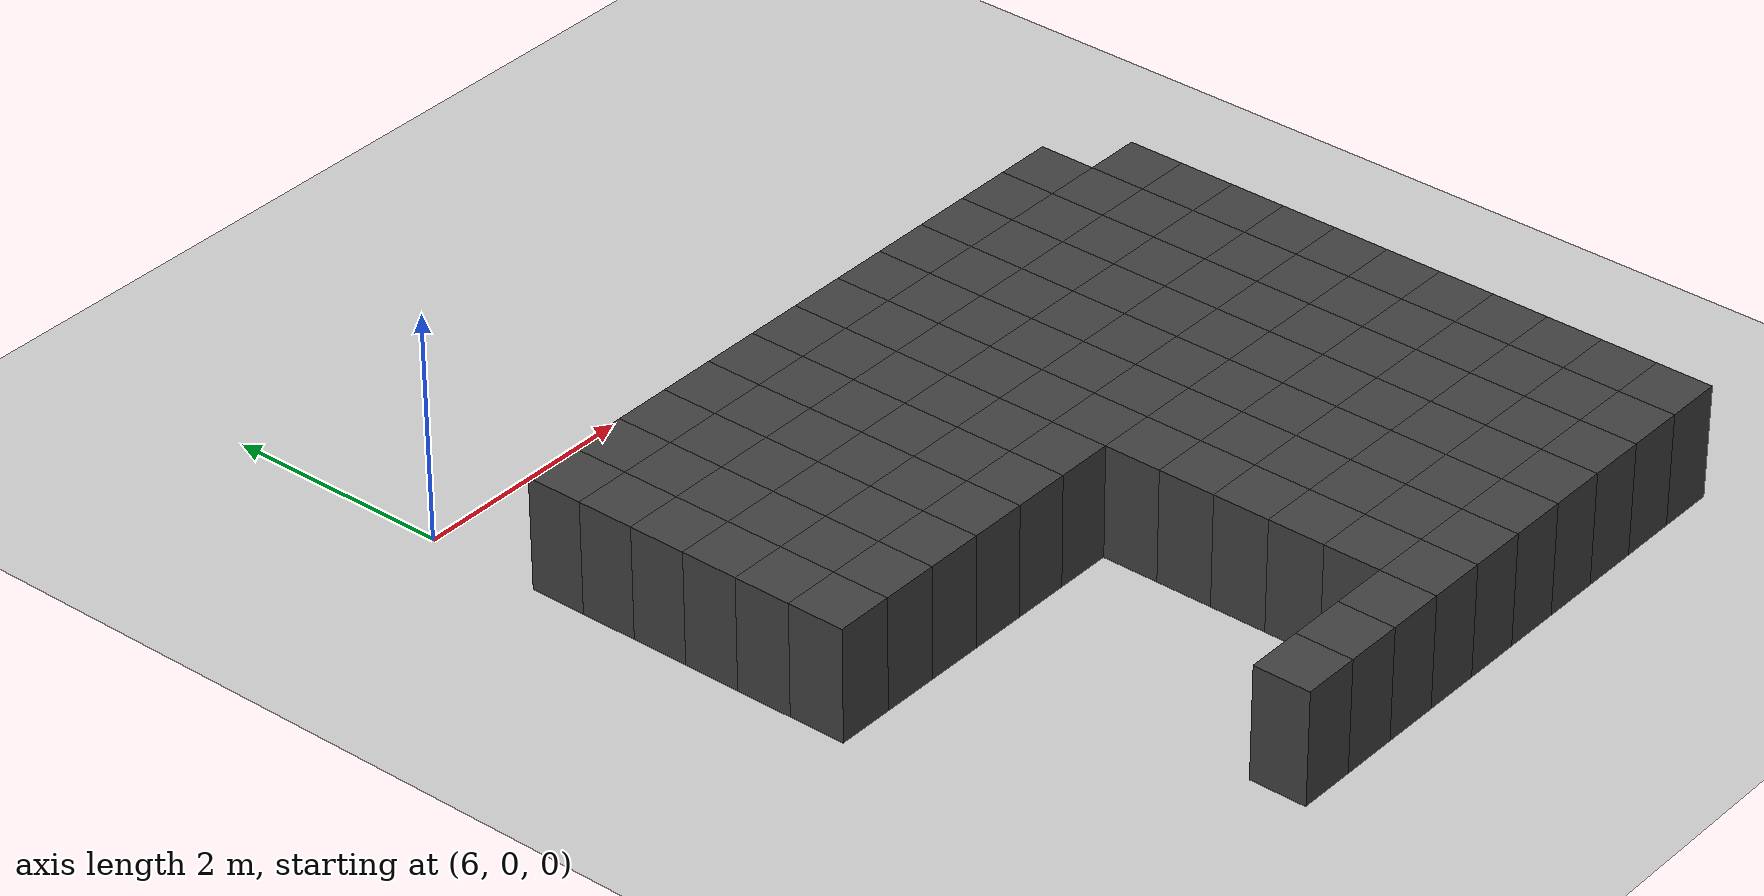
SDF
<sdf version="1.7">
 <world name="map_14888">
  <model name="ground_plane">
   <static>true</static>
   <link name="link">
    <collision name="collision">
     <geometry><plane><normal>0 0 1</normal><size>200 200</size></plane></geometry>
    </collision>
    <visual name="visual">
     <geometry><plane><normal>0 0 1</normal><size>200 200</size></plane></geometry>
     <material><ambient>0.8 0.8 0.8 1</ambient><diffuse>0.8 0.8 0.8 1</diffuse></material>
    </visual>
   </link>
  </model>
  <model name="maze_environment">
   <static>true</static>
   <link name="wall_976">
    <pose>6.250 -1.250 0.500 0 0 0</pose>
    <collision name="col"><geometry><box><size>0.5 0.5 1.0</size></box></geometry></collision>
    <visual name="vis">
     <geometry><box><size>0.5 0.5 1.0</size></box></geometry>
     <material><ambient>0.15 0.15 0.15 1</ambient><diffuse>0.25 0.25 0.25 1</diffuse></material>
    </visual>
   </link>
   <link name="wall_977">
    <pose>6.750 -1.250 0.500 0 0 0</pose>
    <collision name="col"><geometry><box><size>0.5 0.5 1.0</size></box></geometry></collision>
    <visual name="vis">
     <geometry><box><size>0.5 0.5 1.0</size></box></geometry>
     <material><ambient>0.15 0.15 0.15 1</ambient><diffuse>0.25 0.25 0.25 1</diffuse></material>
    </visual>
   </link>
   <link name="wall_978">
    <pose>7.250 -1.250 0.500 0 0 0</pose>
    <collision name="col"><geometry><box><size>0.5 0.5 1.0</size></box></geometry></collision>
    <visual name="vis">
     <geometry><box><size>0.5 0.5 1.0</size></box></geometry>
     <material><ambient>0.15 0.15 0.15 1</ambient><diffuse>0.25 0.25 0.25 1</diffuse></material>
    </visual>
   </link>
   <link name="wall_979">
    <pose>7.750 -1.250 0.500 0 0 0</pose>
    <collision name="col"><geometry><box><size>0.5 0.5 1.0</size></box></geometry></collision>
    <visual name="vis">
     <geometry><box><size>0.5 0.5 1.0</size></box></geometry>
     <material><ambient>0.15 0.15 0.15 1</ambient><diffuse>0.25 0.25 0.25 1</diffuse></material>
    </visual>
   </link>
   <link name="wall_980">
    <pose>8.250 -1.250 0.500 0 0 0</pose>
    <collision name="col"><geometry><box><size>0.5 0.5 1.0</size></box></geometry></collision>
    <visual name="vis">
     <geometry><box><size>0.5 0.5 1.0</size></box></geometry>
     <material><ambient>0.15 0.15 0.15 1</ambient><diffuse>0.25 0.25 0.25 1</diffuse></material>
    </visual>
   </link>
   <link name="wall_981">
    <pose>8.750 -1.250 0.500 0 0 0</pose>
    <collision name="col"><geometry><box><size>0.5 0.5 1.0</size></box></geometry></collision>
    <visual name="vis">
     <geometry><box><size>0.5 0.5 1.0</size></box></geometry>
     <material><ambient>0.15 0.15 0.15 1</ambient><diffuse>0.25 0.25 0.25 1</diffuse></material>
    </visual>
   </link>
   <link name="wall_982">
    <pose>9.250 -1.250 0.500 0 0 0</pose>
    <collision name="col"><geometry><box><size>0.5 0.5 1.0</size></box></geometry></collision>
    <visual name="vis">
     <geometry><box><size>0.5 0.5 1.0</size></box></geometry>
     <material><ambient>0.15 0.15 0.15 1</ambient><diffuse>0.25 0.25 0.25 1</diffuse></material>
    </visual>
   </link>
   <link name="wall_983">
    <pose>9.750 -1.250 0.500 0 0 0</pose>
    <collision name="col"><geometry><box><size>0.5 0.5 1.0</size></box></geometry></collision>
    <visual name="vis">
     <geometry><box><size>0.5 0.5 1.0</size></box></geometry>
     <material><ambient>0.15 0.15 0.15 1</ambient><diffuse>0.25 0.25 0.25 1</diffuse></material>
    </visual>
   </link>
   <link name="wall_984">
    <pose>10.250 -1.250 0.500 0 0 0</pose>
    <collision name="col"><geometry><box><size>0.5 0.5 1.0</size></box></geometry></collision>
    <visual name="vis">
     <geometry><box><size>0.5 0.5 1.0</size></box></geometry>
     <material><ambient>0.15 0.15 0.15 1</ambient><diffuse>0.25 0.25 0.25 1</diffuse></material>
    </visual>
   </link>
   <link name="wall_985">
    <pose>10.750 -1.250 0.500 0 0 0</pose>
    <collision name="col"><geometry><box><size>0.5 0.5 1.0</size></box></geometry></collision>
    <visual name="vis">
     <geometry><box><size>0.5 0.5 1.0</size></box></geometry>
     <material><ambient>0.15 0.15 0.15 1</ambient><diffuse>0.25 0.25 0.25 1</diffuse></material>
    </visual>
   </link>
   <link name="wall_986">
    <pose>11.250 -1.250 0.500 0 0 0</pose>
    <collision name="col"><geometry><box><size>0.5 0.5 1.0</size></box></geometry></collision>
    <visual name="vis">
     <geometry><box><size>0.5 0.5 1.0</size></box></geometry>
     <material><ambient>0.15 0.15 0.15 1</ambient><diffuse>0.25 0.25 0.25 1</diffuse></material>
    </visual>
   </link>
   <link name="wall_987">
    <pose>11.750 -1.250 0.500 0 0 0</pose>
    <collision name="col"><geometry><box><size>0.5 0.5 1.0</size></box></geometry></collision>
    <visual name="vis">
     <geometry><box><size>0.5 0.5 1.0</size></box></geometry>
     <material><ambient>0.15 0.15 0.15 1</ambient><diffuse>0.25 0.25 0.25 1</diffuse></material>
    </visual>
   </link>
   <link name="wall_1022">
    <pose>6.250 -1.750 0.500 0 0 0</pose>
    <collision name="col"><geometry><box><size>0.5 0.5 1.0</size></box></geometry></collision>
    <visual name="vis">
     <geometry><box><size>0.5 0.5 1.0</size></box></geometry>
     <material><ambient>0.15 0.15 0.15 1</ambient><diffuse>0.25 0.25 0.25 1</diffuse></material>
    </visual>
   </link>
   <link name="wall_1023">
    <pose>6.750 -1.750 0.500 0 0 0</pose>
    <collision name="col"><geometry><box><size>0.5 0.5 1.0</size></box></geometry></collision>
    <visual name="vis">
     <geometry><box><size>0.5 0.5 1.0</size></box></geometry>
     <material><ambient>0.15 0.15 0.15 1</ambient><diffuse>0.25 0.25 0.25 1</diffuse></material>
    </visual>
   </link>
   <link name="wall_1024">
    <pose>7.250 -1.750 0.500 0 0 0</pose>
    <collision name="col"><geometry><box><size>0.5 0.5 1.0</size></box></geometry></collision>
    <visual name="vis">
     <geometry><box><size>0.5 0.5 1.0</size></box></geometry>
     <material><ambient>0.15 0.15 0.15 1</ambient><diffuse>0.25 0.25 0.25 1</diffuse></material>
    </visual>
   </link>
   <link name="wall_1025">
    <pose>7.750 -1.750 0.500 0 0 0</pose>
    <collision name="col"><geometry><box><size>0.5 0.5 1.0</size></box></geometry></collision>
    <visual name="vis">
     <geometry><box><size>0.5 0.5 1.0</size></box></geometry>
     <material><ambient>0.15 0.15 0.15 1</ambient><diffuse>0.25 0.25 0.25 1</diffuse></material>
    </visual>
   </link>
   <link name="wall_1026">
    <pose>8.250 -1.750 0.500 0 0 0</pose>
    <collision name="col"><geometry><box><size>0.5 0.5 1.0</size></box></geometry></collision>
    <visual name="vis">
     <geometry><box><size>0.5 0.5 1.0</size></box></geometry>
     <material><ambient>0.15 0.15 0.15 1</ambient><diffuse>0.25 0.25 0.25 1</diffuse></material>
    </visual>
   </link>
   <link name="wall_1027">
    <pose>8.750 -1.750 0.500 0 0 0</pose>
    <collision name="col"><geometry><box><size>0.5 0.5 1.0</size></box></geometry></collision>
    <visual name="vis">
     <geometry><box><size>0.5 0.5 1.0</size></box></geometry>
     <material><ambient>0.15 0.15 0.15 1</ambient><diffuse>0.25 0.25 0.25 1</diffuse></material>
    </visual>
   </link>
   <link name="wall_1028">
    <pose>9.250 -1.750 0.500 0 0 0</pose>
    <collision name="col"><geometry><box><size>0.5 0.5 1.0</size></box></geometry></collision>
    <visual name="vis">
     <geometry><box><size>0.5 0.5 1.0</size></box></geometry>
     <material><ambient>0.15 0.15 0.15 1</ambient><diffuse>0.25 0.25 0.25 1</diffuse></material>
    </visual>
   </link>
   <link name="wall_1029">
    <pose>9.750 -1.750 0.500 0 0 0</pose>
    <collision name="col"><geometry><box><size>0.5 0.5 1.0</size></box></geometry></collision>
    <visual name="vis">
     <geometry><box><size>0.5 0.5 1.0</size></box></geometry>
     <material><ambient>0.15 0.15 0.15 1</ambient><diffuse>0.25 0.25 0.25 1</diffuse></material>
    </visual>
   </link>
   <link name="wall_1030">
    <pose>10.250 -1.750 0.500 0 0 0</pose>
    <collision name="col"><geometry><box><size>0.5 0.5 1.0</size></box></geometry></collision>
    <visual name="vis">
     <geometry><box><size>0.5 0.5 1.0</size></box></geometry>
     <material><ambient>0.15 0.15 0.15 1</ambient><diffuse>0.25 0.25 0.25 1</diffuse></material>
    </visual>
   </link>
   <link name="wall_1031">
    <pose>10.750 -1.750 0.500 0 0 0</pose>
    <collision name="col"><geometry><box><size>0.5 0.5 1.0</size></box></geometry></collision>
    <visual name="vis">
     <geometry><box><size>0.5 0.5 1.0</size></box></geometry>
     <material><ambient>0.15 0.15 0.15 1</ambient><diffuse>0.25 0.25 0.25 1</diffuse></material>
    </visual>
   </link>
   <link name="wall_1032">
    <pose>11.250 -1.750 0.500 0 0 0</pose>
    <collision name="col"><geometry><box><size>0.5 0.5 1.0</size></box></geometry></collision>
    <visual name="vis">
     <geometry><box><size>0.5 0.5 1.0</size></box></geometry>
     <material><ambient>0.15 0.15 0.15 1</ambient><diffuse>0.25 0.25 0.25 1</diffuse></material>
    </visual>
   </link>
   <link name="wall_1033">
    <pose>11.750 -1.750 0.500 0 0 0</pose>
    <collision name="col"><geometry><box><size>0.5 0.5 1.0</size></box></geometry></collision>
    <visual name="vis">
     <geometry><box><size>0.5 0.5 1.0</size></box></geometry>
     <material><ambient>0.15 0.15 0.15 1</ambient><diffuse>0.25 0.25 0.25 1</diffuse></material>
    </visual>
   </link>
   <link name="wall_1034">
    <pose>12.250 -1.750 0.500 0 0 0</pose>
    <collision name="col"><geometry><box><size>0.5 0.5 1.0</size></box></geometry></collision>
    <visual name="vis">
     <geometry><box><size>0.5 0.5 1.0</size></box></geometry>
     <material><ambient>0.15 0.15 0.15 1</ambient><diffuse>0.25 0.25 0.25 1</diffuse></material>
    </visual>
   </link>
   <link name="wall_1068">
    <pose>6.250 -2.250 0.500 0 0 0</pose>
    <collision name="col"><geometry><box><size>0.5 0.5 1.0</size></box></geometry></collision>
    <visual name="vis">
     <geometry><box><size>0.5 0.5 1.0</size></box></geometry>
     <material><ambient>0.15 0.15 0.15 1</ambient><diffuse>0.25 0.25 0.25 1</diffuse></material>
    </visual>
   </link>
   <link name="wall_1069">
    <pose>6.750 -2.250 0.500 0 0 0</pose>
    <collision name="col"><geometry><box><size>0.5 0.5 1.0</size></box></geometry></collision>
    <visual name="vis">
     <geometry><box><size>0.5 0.5 1.0</size></box></geometry>
     <material><ambient>0.15 0.15 0.15 1</ambient><diffuse>0.25 0.25 0.25 1</diffuse></material>
    </visual>
   </link>
   <link name="wall_1070">
    <pose>7.250 -2.250 0.500 0 0 0</pose>
    <collision name="col"><geometry><box><size>0.5 0.5 1.0</size></box></geometry></collision>
    <visual name="vis">
     <geometry><box><size>0.5 0.5 1.0</size></box></geometry>
     <material><ambient>0.15 0.15 0.15 1</ambient><diffuse>0.25 0.25 0.25 1</diffuse></material>
    </visual>
   </link>
   <link name="wall_1071">
    <pose>7.750 -2.250 0.500 0 0 0</pose>
    <collision name="col"><geometry><box><size>0.5 0.5 1.0</size></box></geometry></collision>
    <visual name="vis">
     <geometry><box><size>0.5 0.5 1.0</size></box></geometry>
     <material><ambient>0.15 0.15 0.15 1</ambient><diffuse>0.25 0.25 0.25 1</diffuse></material>
    </visual>
   </link>
   <link name="wall_1072">
    <pose>8.250 -2.250 0.500 0 0 0</pose>
    <collision name="col"><geometry><box><size>0.5 0.5 1.0</size></box></geometry></collision>
    <visual name="vis">
     <geometry><box><size>0.5 0.5 1.0</size></box></geometry>
     <material><ambient>0.15 0.15 0.15 1</ambient><diffuse>0.25 0.25 0.25 1</diffuse></material>
    </visual>
   </link>
   <link name="wall_1073">
    <pose>8.750 -2.250 0.500 0 0 0</pose>
    <collision name="col"><geometry><box><size>0.5 0.5 1.0</size></box></geometry></collision>
    <visual name="vis">
     <geometry><box><size>0.5 0.5 1.0</size></box></geometry>
     <material><ambient>0.15 0.15 0.15 1</ambient><diffuse>0.25 0.25 0.25 1</diffuse></material>
    </visual>
   </link>
   <link name="wall_1074">
    <pose>9.250 -2.250 0.500 0 0 0</pose>
    <collision name="col"><geometry><box><size>0.5 0.5 1.0</size></box></geometry></collision>
    <visual name="vis">
     <geometry><box><size>0.5 0.5 1.0</size></box></geometry>
     <material><ambient>0.15 0.15 0.15 1</ambient><diffuse>0.25 0.25 0.25 1</diffuse></material>
    </visual>
   </link>
   <link name="wall_1075">
    <pose>9.750 -2.250 0.500 0 0 0</pose>
    <collision name="col"><geometry><box><size>0.5 0.5 1.0</size></box></geometry></collision>
    <visual name="vis">
     <geometry><box><size>0.5 0.5 1.0</size></box></geometry>
     <material><ambient>0.15 0.15 0.15 1</ambient><diffuse>0.25 0.25 0.25 1</diffuse></material>
    </visual>
   </link>
   <link name="wall_1076">
    <pose>10.250 -2.250 0.500 0 0 0</pose>
    <collision name="col"><geometry><box><size>0.5 0.5 1.0</size></box></geometry></collision>
    <visual name="vis">
     <geometry><box><size>0.5 0.5 1.0</size></box></geometry>
     <material><ambient>0.15 0.15 0.15 1</ambient><diffuse>0.25 0.25 0.25 1</diffuse></material>
    </visual>
   </link>
   <link name="wall_1077">
    <pose>10.750 -2.250 0.500 0 0 0</pose>
    <collision name="col"><geometry><box><size>0.5 0.5 1.0</size></box></geometry></collision>
    <visual name="vis">
     <geometry><box><size>0.5 0.5 1.0</size></box></geometry>
     <material><ambient>0.15 0.15 0.15 1</ambient><diffuse>0.25 0.25 0.25 1</diffuse></material>
    </visual>
   </link>
   <link name="wall_1078">
    <pose>11.250 -2.250 0.500 0 0 0</pose>
    <collision name="col"><geometry><box><size>0.5 0.5 1.0</size></box></geometry></collision>
    <visual name="vis">
     <geometry><box><size>0.5 0.5 1.0</size></box></geometry>
     <material><ambient>0.15 0.15 0.15 1</ambient><diffuse>0.25 0.25 0.25 1</diffuse></material>
    </visual>
   </link>
   <link name="wall_1079">
    <pose>11.750 -2.250 0.500 0 0 0</pose>
    <collision name="col"><geometry><box><size>0.5 0.5 1.0</size></box></geometry></collision>
    <visual name="vis">
     <geometry><box><size>0.5 0.5 1.0</size></box></geometry>
     <material><ambient>0.15 0.15 0.15 1</ambient><diffuse>0.25 0.25 0.25 1</diffuse></material>
    </visual>
   </link>
   <link name="wall_1080">
    <pose>12.250 -2.250 0.500 0 0 0</pose>
    <collision name="col"><geometry><box><size>0.5 0.5 1.0</size></box></geometry></collision>
    <visual name="vis">
     <geometry><box><size>0.5 0.5 1.0</size></box></geometry>
     <material><ambient>0.15 0.15 0.15 1</ambient><diffuse>0.25 0.25 0.25 1</diffuse></material>
    </visual>
   </link>
   <link name="wall_1117">
    <pose>6.250 -2.750 0.500 0 0 0</pose>
    <collision name="col"><geometry><box><size>0.5 0.5 1.0</size></box></geometry></collision>
    <visual name="vis">
     <geometry><box><size>0.5 0.5 1.0</size></box></geometry>
     <material><ambient>0.15 0.15 0.15 1</ambient><diffuse>0.25 0.25 0.25 1</diffuse></material>
    </visual>
   </link>
   <link name="wall_1118">
    <pose>6.750 -2.750 0.500 0 0 0</pose>
    <collision name="col"><geometry><box><size>0.5 0.5 1.0</size></box></geometry></collision>
    <visual name="vis">
     <geometry><box><size>0.5 0.5 1.0</size></box></geometry>
     <material><ambient>0.15 0.15 0.15 1</ambient><diffuse>0.25 0.25 0.25 1</diffuse></material>
    </visual>
   </link>
   <link name="wall_1119">
    <pose>7.250 -2.750 0.500 0 0 0</pose>
    <collision name="col"><geometry><box><size>0.5 0.5 1.0</size></box></geometry></collision>
    <visual name="vis">
     <geometry><box><size>0.5 0.5 1.0</size></box></geometry>
     <material><ambient>0.15 0.15 0.15 1</ambient><diffuse>0.25 0.25 0.25 1</diffuse></material>
    </visual>
   </link>
   <link name="wall_1120">
    <pose>7.750 -2.750 0.500 0 0 0</pose>
    <collision name="col"><geometry><box><size>0.5 0.5 1.0</size></box></geometry></collision>
    <visual name="vis">
     <geometry><box><size>0.5 0.5 1.0</size></box></geometry>
     <material><ambient>0.15 0.15 0.15 1</ambient><diffuse>0.25 0.25 0.25 1</diffuse></material>
    </visual>
   </link>
   <link name="wall_1121">
    <pose>8.250 -2.750 0.500 0 0 0</pose>
    <collision name="col"><geometry><box><size>0.5 0.5 1.0</size></box></geometry></collision>
    <visual name="vis">
     <geometry><box><size>0.5 0.5 1.0</size></box></geometry>
     <material><ambient>0.15 0.15 0.15 1</ambient><diffuse>0.25 0.25 0.25 1</diffuse></material>
    </visual>
   </link>
   <link name="wall_1122">
    <pose>8.750 -2.750 0.500 0 0 0</pose>
    <collision name="col"><geometry><box><size>0.5 0.5 1.0</size></box></geometry></collision>
    <visual name="vis">
     <geometry><box><size>0.5 0.5 1.0</size></box></geometry>
     <material><ambient>0.15 0.15 0.15 1</ambient><diffuse>0.25 0.25 0.25 1</diffuse></material>
    </visual>
   </link>
   <link name="wall_1123">
    <pose>9.250 -2.750 0.500 0 0 0</pose>
    <collision name="col"><geometry><box><size>0.5 0.5 1.0</size></box></geometry></collision>
    <visual name="vis">
     <geometry><box><size>0.5 0.5 1.0</size></box></geometry>
     <material><ambient>0.15 0.15 0.15 1</ambient><diffuse>0.25 0.25 0.25 1</diffuse></material>
    </visual>
   </link>
   <link name="wall_1124">
    <pose>9.750 -2.750 0.500 0 0 0</pose>
    <collision name="col"><geometry><box><size>0.5 0.5 1.0</size></box></geometry></collision>
    <visual name="vis">
     <geometry><box><size>0.5 0.5 1.0</size></box></geometry>
     <material><ambient>0.15 0.15 0.15 1</ambient><diffuse>0.25 0.25 0.25 1</diffuse></material>
    </visual>
   </link>
   <link name="wall_1125">
    <pose>10.250 -2.750 0.500 0 0 0</pose>
    <collision name="col"><geometry><box><size>0.5 0.5 1.0</size></box></geometry></collision>
    <visual name="vis">
     <geometry><box><size>0.5 0.5 1.0</size></box></geometry>
     <material><ambient>0.15 0.15 0.15 1</ambient><diffuse>0.25 0.25 0.25 1</diffuse></material>
    </visual>
   </link>
   <link name="wall_1126">
    <pose>10.750 -2.750 0.500 0 0 0</pose>
    <collision name="col"><geometry><box><size>0.5 0.5 1.0</size></box></geometry></collision>
    <visual name="vis">
     <geometry><box><size>0.5 0.5 1.0</size></box></geometry>
     <material><ambient>0.15 0.15 0.15 1</ambient><diffuse>0.25 0.25 0.25 1</diffuse></material>
    </visual>
   </link>
   <link name="wall_1127">
    <pose>11.250 -2.750 0.500 0 0 0</pose>
    <collision name="col"><geometry><box><size>0.5 0.5 1.0</size></box></geometry></collision>
    <visual name="vis">
     <geometry><box><size>0.5 0.5 1.0</size></box></geometry>
     <material><ambient>0.15 0.15 0.15 1</ambient><diffuse>0.25 0.25 0.25 1</diffuse></material>
    </visual>
   </link>
   <link name="wall_1128">
    <pose>11.750 -2.750 0.500 0 0 0</pose>
    <collision name="col"><geometry><box><size>0.5 0.5 1.0</size></box></geometry></collision>
    <visual name="vis">
     <geometry><box><size>0.5 0.5 1.0</size></box></geometry>
     <material><ambient>0.15 0.15 0.15 1</ambient><diffuse>0.25 0.25 0.25 1</diffuse></material>
    </visual>
   </link>
   <link name="wall_1129">
    <pose>12.250 -2.750 0.500 0 0 0</pose>
    <collision name="col"><geometry><box><size>0.5 0.5 1.0</size></box></geometry></collision>
    <visual name="vis">
     <geometry><box><size>0.5 0.5 1.0</size></box></geometry>
     <material><ambient>0.15 0.15 0.15 1</ambient><diffuse>0.25 0.25 0.25 1</diffuse></material>
    </visual>
   </link>
   <link name="wall_1166">
    <pose>6.250 -3.250 0.500 0 0 0</pose>
    <collision name="col"><geometry><box><size>0.5 0.5 1.0</size></box></geometry></collision>
    <visual name="vis">
     <geometry><box><size>0.5 0.5 1.0</size></box></geometry>
     <material><ambient>0.15 0.15 0.15 1</ambient><diffuse>0.25 0.25 0.25 1</diffuse></material>
    </visual>
   </link>
   <link name="wall_1167">
    <pose>6.750 -3.250 0.500 0 0 0</pose>
    <collision name="col"><geometry><box><size>0.5 0.5 1.0</size></box></geometry></collision>
    <visual name="vis">
     <geometry><box><size>0.5 0.5 1.0</size></box></geometry>
     <material><ambient>0.15 0.15 0.15 1</ambient><diffuse>0.25 0.25 0.25 1</diffuse></material>
    </visual>
   </link>
   <link name="wall_1168">
    <pose>7.250 -3.250 0.500 0 0 0</pose>
    <collision name="col"><geometry><box><size>0.5 0.5 1.0</size></box></geometry></collision>
    <visual name="vis">
     <geometry><box><size>0.5 0.5 1.0</size></box></geometry>
     <material><ambient>0.15 0.15 0.15 1</ambient><diffuse>0.25 0.25 0.25 1</diffuse></material>
    </visual>
   </link>
   <link name="wall_1169">
    <pose>7.750 -3.250 0.500 0 0 0</pose>
    <collision name="col"><geometry><box><size>0.5 0.5 1.0</size></box></geometry></collision>
    <visual name="vis">
     <geometry><box><size>0.5 0.5 1.0</size></box></geometry>
     <material><ambient>0.15 0.15 0.15 1</ambient><diffuse>0.25 0.25 0.25 1</diffuse></material>
    </visual>
   </link>
   <link name="wall_1170">
    <pose>8.250 -3.250 0.500 0 0 0</pose>
    <collision name="col"><geometry><box><size>0.5 0.5 1.0</size></box></geometry></collision>
    <visual name="vis">
     <geometry><box><size>0.5 0.5 1.0</size></box></geometry>
     <material><ambient>0.15 0.15 0.15 1</ambient><diffuse>0.25 0.25 0.25 1</diffuse></material>
    </visual>
   </link>
   <link name="wall_1171">
    <pose>8.750 -3.250 0.500 0 0 0</pose>
    <collision name="col"><geometry><box><size>0.5 0.5 1.0</size></box></geometry></collision>
    <visual name="vis">
     <geometry><box><size>0.5 0.5 1.0</size></box></geometry>
     <material><ambient>0.15 0.15 0.15 1</ambient><diffuse>0.25 0.25 0.25 1</diffuse></material>
    </visual>
   </link>
   <link name="wall_1172">
    <pose>9.250 -3.250 0.500 0 0 0</pose>
    <collision name="col"><geometry><box><size>0.5 0.5 1.0</size></box></geometry></collision>
    <visual name="vis">
     <geometry><box><size>0.5 0.5 1.0</size></box></geometry>
     <material><ambient>0.15 0.15 0.15 1</ambient><diffuse>0.25 0.25 0.25 1</diffuse></material>
    </visual>
   </link>
   <link name="wall_1173">
    <pose>9.750 -3.250 0.500 0 0 0</pose>
    <collision name="col"><geometry><box><size>0.5 0.5 1.0</size></box></geometry></collision>
    <visual name="vis">
     <geometry><box><size>0.5 0.5 1.0</size></box></geometry>
     <material><ambient>0.15 0.15 0.15 1</ambient><diffuse>0.25 0.25 0.25 1</diffuse></material>
    </visual>
   </link>
   <link name="wall_1174">
    <pose>10.250 -3.250 0.500 0 0 0</pose>
    <collision name="col"><geometry><box><size>0.5 0.5 1.0</size></box></geometry></collision>
    <visual name="vis">
     <geometry><box><size>0.5 0.5 1.0</size></box></geometry>
     <material><ambient>0.15 0.15 0.15 1</ambient><diffuse>0.25 0.25 0.25 1</diffuse></material>
    </visual>
   </link>
   <link name="wall_1175">
    <pose>10.750 -3.250 0.500 0 0 0</pose>
    <collision name="col"><geometry><box><size>0.5 0.5 1.0</size></box></geometry></collision>
    <visual name="vis">
     <geometry><box><size>0.5 0.5 1.0</size></box></geometry>
     <material><ambient>0.15 0.15 0.15 1</ambient><diffuse>0.25 0.25 0.25 1</diffuse></material>
    </visual>
   </link>
   <link name="wall_1176">
    <pose>11.250 -3.250 0.500 0 0 0</pose>
    <collision name="col"><geometry><box><size>0.5 0.5 1.0</size></box></geometry></collision>
    <visual name="vis">
     <geometry><box><size>0.5 0.5 1.0</size></box></geometry>
     <material><ambient>0.15 0.15 0.15 1</ambient><diffuse>0.25 0.25 0.25 1</diffuse></material>
    </visual>
   </link>
   <link name="wall_1177">
    <pose>11.750 -3.250 0.500 0 0 0</pose>
    <collision name="col"><geometry><box><size>0.5 0.5 1.0</size></box></geometry></collision>
    <visual name="vis">
     <geometry><box><size>0.5 0.5 1.0</size></box></geometry>
     <material><ambient>0.15 0.15 0.15 1</ambient><diffuse>0.25 0.25 0.25 1</diffuse></material>
    </visual>
   </link>
   <link name="wall_1178">
    <pose>12.250 -3.250 0.500 0 0 0</pose>
    <collision name="col"><geometry><box><size>0.5 0.5 1.0</size></box></geometry></collision>
    <visual name="vis">
     <geometry><box><size>0.5 0.5 1.0</size></box></geometry>
     <material><ambient>0.15 0.15 0.15 1</ambient><diffuse>0.25 0.25 0.25 1</diffuse></material>
    </visual>
   </link>
   <link name="wall_1215">
    <pose>6.250 -3.750 0.500 0 0 0</pose>
    <collision name="col"><geometry><box><size>0.5 0.5 1.0</size></box></geometry></collision>
    <visual name="vis">
     <geometry><box><size>0.5 0.5 1.0</size></box></geometry>
     <material><ambient>0.15 0.15 0.15 1</ambient><diffuse>0.25 0.25 0.25 1</diffuse></material>
    </visual>
   </link>
   <link name="wall_1216">
    <pose>6.750 -3.750 0.500 0 0 0</pose>
    <collision name="col"><geometry><box><size>0.5 0.5 1.0</size></box></geometry></collision>
    <visual name="vis">
     <geometry><box><size>0.5 0.5 1.0</size></box></geometry>
     <material><ambient>0.15 0.15 0.15 1</ambient><diffuse>0.25 0.25 0.25 1</diffuse></material>
    </visual>
   </link>
   <link name="wall_1217">
    <pose>7.250 -3.750 0.500 0 0 0</pose>
    <collision name="col"><geometry><box><size>0.5 0.5 1.0</size></box></geometry></collision>
    <visual name="vis">
     <geometry><box><size>0.5 0.5 1.0</size></box></geometry>
     <material><ambient>0.15 0.15 0.15 1</ambient><diffuse>0.25 0.25 0.25 1</diffuse></material>
    </visual>
   </link>
   <link name="wall_1218">
    <pose>7.750 -3.750 0.500 0 0 0</pose>
    <collision name="col"><geometry><box><size>0.5 0.5 1.0</size></box></geometry></collision>
    <visual name="vis">
     <geometry><box><size>0.5 0.5 1.0</size></box></geometry>
     <material><ambient>0.15 0.15 0.15 1</ambient><diffuse>0.25 0.25 0.25 1</diffuse></material>
    </visual>
   </link>
   <link name="wall_1219">
    <pose>8.250 -3.750 0.500 0 0 0</pose>
    <collision name="col"><geometry><box><size>0.5 0.5 1.0</size></box></geometry></collision>
    <visual name="vis">
     <geometry><box><size>0.5 0.5 1.0</size></box></geometry>
     <material><ambient>0.15 0.15 0.15 1</ambient><diffuse>0.25 0.25 0.25 1</diffuse></material>
    </visual>
   </link>
   <link name="wall_1220">
    <pose>8.750 -3.750 0.500 0 0 0</pose>
    <collision name="col"><geometry><box><size>0.5 0.5 1.0</size></box></geometry></collision>
    <visual name="vis">
     <geometry><box><size>0.5 0.5 1.0</size></box></geometry>
     <material><ambient>0.15 0.15 0.15 1</ambient><diffuse>0.25 0.25 0.25 1</diffuse></material>
    </visual>
   </link>
   <link name="wall_1221">
    <pose>9.250 -3.750 0.500 0 0 0</pose>
    <collision name="col"><geometry><box><size>0.5 0.5 1.0</size></box></geometry></collision>
    <visual name="vis">
     <geometry><box><size>0.5 0.5 1.0</size></box></geometry>
     <material><ambient>0.15 0.15 0.15 1</ambient><diffuse>0.25 0.25 0.25 1</diffuse></material>
    </visual>
   </link>
   <link name="wall_1222">
    <pose>9.750 -3.750 0.500 0 0 0</pose>
    <collision name="col"><geometry><box><size>0.5 0.5 1.0</size></box></geometry></collision>
    <visual name="vis">
     <geometry><box><size>0.5 0.5 1.0</size></box></geometry>
     <material><ambient>0.15 0.15 0.15 1</ambient><diffuse>0.25 0.25 0.25 1</diffuse></material>
    </visual>
   </link>
   <link name="wall_1223">
    <pose>10.250 -3.750 0.500 0 0 0</pose>
    <collision name="col"><geometry><box><size>0.5 0.5 1.0</size></box></geometry></collision>
    <visual name="vis">
     <geometry><box><size>0.5 0.5 1.0</size></box></geometry>
     <material><ambient>0.15 0.15 0.15 1</ambient><diffuse>0.25 0.25 0.25 1</diffuse></material>
    </visual>
   </link>
   <link name="wall_1224">
    <pose>10.750 -3.750 0.500 0 0 0</pose>
    <collision name="col"><geometry><box><size>0.5 0.5 1.0</size></box></geometry></collision>
    <visual name="vis">
     <geometry><box><size>0.5 0.5 1.0</size></box></geometry>
     <material><ambient>0.15 0.15 0.15 1</ambient><diffuse>0.25 0.25 0.25 1</diffuse></material>
    </visual>
   </link>
   <link name="wall_1225">
    <pose>11.250 -3.750 0.500 0 0 0</pose>
    <collision name="col"><geometry><box><size>0.5 0.5 1.0</size></box></geometry></collision>
    <visual name="vis">
     <geometry><box><size>0.5 0.5 1.0</size></box></geometry>
     <material><ambient>0.15 0.15 0.15 1</ambient><diffuse>0.25 0.25 0.25 1</diffuse></material>
    </visual>
   </link>
   <link name="wall_1226">
    <pose>11.750 -3.750 0.500 0 0 0</pose>
    <collision name="col"><geometry><box><size>0.5 0.5 1.0</size></box></geometry></collision>
    <visual name="vis">
     <geometry><box><size>0.5 0.5 1.0</size></box></geometry>
     <material><ambient>0.15 0.15 0.15 1</ambient><diffuse>0.25 0.25 0.25 1</diffuse></material>
    </visual>
   </link>
   <link name="wall_1227">
    <pose>12.250 -3.750 0.500 0 0 0</pose>
    <collision name="col"><geometry><box><size>0.5 0.5 1.0</size></box></geometry></collision>
    <visual name="vis">
     <geometry><box><size>0.5 0.5 1.0</size></box></geometry>
     <material><ambient>0.15 0.15 0.15 1</ambient><diffuse>0.25 0.25 0.25 1</diffuse></material>
    </visual>
   </link>
   <link name="wall_1255">
    <pose>9.250 -4.250 0.500 0 0 0</pose>
    <collision name="col"><geometry><box><size>0.5 0.5 1.0</size></box></geometry></collision>
    <visual name="vis">
     <geometry><box><size>0.5 0.5 1.0</size></box></geometry>
     <material><ambient>0.15 0.15 0.15 1</ambient><diffuse>0.25 0.25 0.25 1</diffuse></material>
    </visual>
   </link>
   <link name="wall_1256">
    <pose>9.750 -4.250 0.500 0 0 0</pose>
    <collision name="col"><geometry><box><size>0.5 0.5 1.0</size></box></geometry></collision>
    <visual name="vis">
     <geometry><box><size>0.5 0.5 1.0</size></box></geometry>
     <material><ambient>0.15 0.15 0.15 1</ambient><diffuse>0.25 0.25 0.25 1</diffuse></material>
    </visual>
   </link>
   <link name="wall_1257">
    <pose>10.250 -4.250 0.500 0 0 0</pose>
    <collision name="col"><geometry><box><size>0.5 0.5 1.0</size></box></geometry></collision>
    <visual name="vis">
     <geometry><box><size>0.5 0.5 1.0</size></box></geometry>
     <material><ambient>0.15 0.15 0.15 1</ambient><diffuse>0.25 0.25 0.25 1</diffuse></material>
    </visual>
   </link>
   <link name="wall_1258">
    <pose>10.750 -4.250 0.500 0 0 0</pose>
    <collision name="col"><geometry><box><size>0.5 0.5 1.0</size></box></geometry></collision>
    <visual name="vis">
     <geometry><box><size>0.5 0.5 1.0</size></box></geometry>
     <material><ambient>0.15 0.15 0.15 1</ambient><diffuse>0.25 0.25 0.25 1</diffuse></material>
    </visual>
   </link>
   <link name="wall_1259">
    <pose>11.250 -4.250 0.500 0 0 0</pose>
    <collision name="col"><geometry><box><size>0.5 0.5 1.0</size></box></geometry></collision>
    <visual name="vis">
     <geometry><box><size>0.5 0.5 1.0</size></box></geometry>
     <material><ambient>0.15 0.15 0.15 1</ambient><diffuse>0.25 0.25 0.25 1</diffuse></material>
    </visual>
   </link>
   <link name="wall_1260">
    <pose>11.750 -4.250 0.500 0 0 0</pose>
    <collision name="col"><geometry><box><size>0.5 0.5 1.0</size></box></geometry></collision>
    <visual name="vis">
     <geometry><box><size>0.5 0.5 1.0</size></box></geometry>
     <material><ambient>0.15 0.15 0.15 1</ambient><diffuse>0.25 0.25 0.25 1</diffuse></material>
    </visual>
   </link>
   <link name="wall_1261">
    <pose>12.250 -4.250 0.500 0 0 0</pose>
    <collision name="col"><geometry><box><size>0.5 0.5 1.0</size></box></geometry></collision>
    <visual name="vis">
     <geometry><box><size>0.5 0.5 1.0</size></box></geometry>
     <material><ambient>0.15 0.15 0.15 1</ambient><diffuse>0.25 0.25 0.25 1</diffuse></material>
    </visual>
   </link>
   <link name="wall_1289">
    <pose>9.250 -4.750 0.500 0 0 0</pose>
    <collision name="col"><geometry><box><size>0.5 0.5 1.0</size></box></geometry></collision>
    <visual name="vis">
     <geometry><box><size>0.5 0.5 1.0</size></box></geometry>
     <material><ambient>0.15 0.15 0.15 1</ambient><diffuse>0.25 0.25 0.25 1</diffuse></material>
    </visual>
   </link>
   <link name="wall_1290">
    <pose>9.750 -4.750 0.500 0 0 0</pose>
    <collision name="col"><geometry><box><size>0.5 0.5 1.0</size></box></geometry></collision>
    <visual name="vis">
     <geometry><box><size>0.5 0.5 1.0</size></box></geometry>
     <material><ambient>0.15 0.15 0.15 1</ambient><diffuse>0.25 0.25 0.25 1</diffuse></material>
    </visual>
   </link>
   <link name="wall_1291">
    <pose>10.250 -4.750 0.500 0 0 0</pose>
    <collision name="col"><geometry><box><size>0.5 0.5 1.0</size></box></geometry></collision>
    <visual name="vis">
     <geometry><box><size>0.5 0.5 1.0</size></box></geometry>
     <material><ambient>0.15 0.15 0.15 1</ambient><diffuse>0.25 0.25 0.25 1</diffuse></material>
    </visual>
   </link>
   <link name="wall_1292">
    <pose>10.750 -4.750 0.500 0 0 0</pose>
    <collision name="col"><geometry><box><size>0.5 0.5 1.0</size></box></geometry></collision>
    <visual name="vis">
     <geometry><box><size>0.5 0.5 1.0</size></box></geometry>
     <material><ambient>0.15 0.15 0.15 1</ambient><diffuse>0.25 0.25 0.25 1</diffuse></material>
    </visual>
   </link>
   <link name="wall_1293">
    <pose>11.250 -4.750 0.500 0 0 0</pose>
    <collision name="col"><geometry><box><size>0.5 0.5 1.0</size></box></geometry></collision>
    <visual name="vis">
     <geometry><box><size>0.5 0.5 1.0</size></box></geometry>
     <material><ambient>0.15 0.15 0.15 1</ambient><diffuse>0.25 0.25 0.25 1</diffuse></material>
    </visual>
   </link>
   <link name="wall_1294">
    <pose>11.750 -4.750 0.500 0 0 0</pose>
    <collision name="col"><geometry><box><size>0.5 0.5 1.0</size></box></geometry></collision>
    <visual name="vis">
     <geometry><box><size>0.5 0.5 1.0</size></box></geometry>
     <material><ambient>0.15 0.15 0.15 1</ambient><diffuse>0.25 0.25 0.25 1</diffuse></material>
    </visual>
   </link>
   <link name="wall_1295">
    <pose>12.250 -4.750 0.500 0 0 0</pose>
    <collision name="col"><geometry><box><size>0.5 0.5 1.0</size></box></geometry></collision>
    <visual name="vis">
     <geometry><box><size>0.5 0.5 1.0</size></box></geometry>
     <material><ambient>0.15 0.15 0.15 1</ambient><diffuse>0.25 0.25 0.25 1</diffuse></material>
    </visual>
   </link>
   <link name="wall_1313">
    <pose>9.250 -5.250 0.500 0 0 0</pose>
    <collision name="col"><geometry><box><size>0.5 0.5 1.0</size></box></geometry></collision>
    <visual name="vis">
     <geometry><box><size>0.5 0.5 1.0</size></box></geometry>
     <material><ambient>0.15 0.15 0.15 1</ambient><diffuse>0.25 0.25 0.25 1</diffuse></material>
    </visual>
   </link>
   <link name="wall_1314">
    <pose>9.750 -5.250 0.500 0 0 0</pose>
    <collision name="col"><geometry><box><size>0.5 0.5 1.0</size></box></geometry></collision>
    <visual name="vis">
     <geometry><box><size>0.5 0.5 1.0</size></box></geometry>
     <material><ambient>0.15 0.15 0.15 1</ambient><diffuse>0.25 0.25 0.25 1</diffuse></material>
    </visual>
   </link>
   <link name="wall_1315">
    <pose>10.250 -5.250 0.500 0 0 0</pose>
    <collision name="col"><geometry><box><size>0.5 0.5 1.0</size></box></geometry></collision>
    <visual name="vis">
     <geometry><box><size>0.5 0.5 1.0</size></box></geometry>
     <material><ambient>0.15 0.15 0.15 1</ambient><diffuse>0.25 0.25 0.25 1</diffuse></material>
    </visual>
   </link>
   <link name="wall_1316">
    <pose>10.750 -5.250 0.500 0 0 0</pose>
    <collision name="col"><geometry><box><size>0.5 0.5 1.0</size></box></geometry></collision>
    <visual name="vis">
     <geometry><box><size>0.5 0.5 1.0</size></box></geometry>
     <material><ambient>0.15 0.15 0.15 1</ambient><diffuse>0.25 0.25 0.25 1</diffuse></material>
    </visual>
   </link>
   <link name="wall_1317">
    <pose>11.250 -5.250 0.500 0 0 0</pose>
    <collision name="col"><geometry><box><size>0.5 0.5 1.0</size></box></geometry></collision>
    <visual name="vis">
     <geometry><box><size>0.5 0.5 1.0</size></box></geometry>
     <material><ambient>0.15 0.15 0.15 1</ambient><diffuse>0.25 0.25 0.25 1</diffuse></material>
    </visual>
   </link>
   <link name="wall_1318">
    <pose>11.750 -5.250 0.500 0 0 0</pose>
    <collision name="col"><geometry><box><size>0.5 0.5 1.0</size></box></geometry></collision>
    <visual name="vis">
     <geometry><box><size>0.5 0.5 1.0</size></box></geometry>
     <material><ambient>0.15 0.15 0.15 1</ambient><diffuse>0.25 0.25 0.25 1</diffuse></material>
    </visual>
   </link>
   <link name="wall_1319">
    <pose>12.250 -5.250 0.500 0 0 0</pose>
    <collision name="col"><geometry><box><size>0.5 0.5 1.0</size></box></geometry></collision>
    <visual name="vis">
     <geometry><box><size>0.5 0.5 1.0</size></box></geometry>
     <material><ambient>0.15 0.15 0.15 1</ambient><diffuse>0.25 0.25 0.25 1</diffuse></material>
    </visual>
   </link>
   <link name="wall_1339">
    <pose>9.250 -5.750 0.500 0 0 0</pose>
    <collision name="col"><geometry><box><size>0.5 0.5 1.0</size></box></geometry></collision>
    <visual name="vis">
     <geometry><box><size>0.5 0.5 1.0</size></box></geometry>
     <material><ambient>0.15 0.15 0.15 1</ambient><diffuse>0.25 0.25 0.25 1</diffuse></material>
    </visual>
   </link>
   <link name="wall_1340">
    <pose>9.750 -5.750 0.500 0 0 0</pose>
    <collision name="col"><geometry><box><size>0.5 0.5 1.0</size></box></geometry></collision>
    <visual name="vis">
     <geometry><box><size>0.5 0.5 1.0</size></box></geometry>
     <material><ambient>0.15 0.15 0.15 1</ambient><diffuse>0.25 0.25 0.25 1</diffuse></material>
    </visual>
   </link>
   <link name="wall_1341">
    <pose>10.250 -5.750 0.500 0 0 0</pose>
    <collision name="col"><geometry><box><size>0.5 0.5 1.0</size></box></geometry></collision>
    <visual name="vis">
     <geometry><box><size>0.5 0.5 1.0</size></box></geometry>
     <material><ambient>0.15 0.15 0.15 1</ambient><diffuse>0.25 0.25 0.25 1</diffuse></material>
    </visual>
   </link>
   <link name="wall_1342">
    <pose>10.750 -5.750 0.500 0 0 0</pose>
    <collision name="col"><geometry><box><size>0.5 0.5 1.0</size></box></geometry></collision>
    <visual name="vis">
     <geometry><box><size>0.5 0.5 1.0</size></box></geometry>
     <material><ambient>0.15 0.15 0.15 1</ambient><diffuse>0.25 0.25 0.25 1</diffuse></material>
    </visual>
   </link>
   <link name="wall_1343">
    <pose>11.250 -5.750 0.500 0 0 0</pose>
    <collision name="col"><geometry><box><size>0.5 0.5 1.0</size></box></geometry></collision>
    <visual name="vis">
     <geometry><box><size>0.5 0.5 1.0</size></box></geometry>
     <material><ambient>0.15 0.15 0.15 1</ambient><diffuse>0.25 0.25 0.25 1</diffuse></material>
    </visual>
   </link>
   <link name="wall_1344">
    <pose>11.750 -5.750 0.500 0 0 0</pose>
    <collision name="col"><geometry><box><size>0.5 0.5 1.0</size></box></geometry></collision>
    <visual name="vis">
     <geometry><box><size>0.5 0.5 1.0</size></box></geometry>
     <material><ambient>0.15 0.15 0.15 1</ambient><diffuse>0.25 0.25 0.25 1</diffuse></material>
    </visual>
   </link>
   <link name="wall_1345">
    <pose>12.250 -5.750 0.500 0 0 0</pose>
    <collision name="col"><geometry><box><size>0.5 0.5 1.0</size></box></geometry></collision>
    <visual name="vis">
     <geometry><box><size>0.5 0.5 1.0</size></box></geometry>
     <material><ambient>0.15 0.15 0.15 1</ambient><diffuse>0.25 0.25 0.25 1</diffuse></material>
    </visual>
   </link>
   <link name="wall_1365">
    <pose>9.250 -6.250 0.500 0 0 0</pose>
    <collision name="col"><geometry><box><size>0.5 0.5 1.0</size></box></geometry></collision>
    <visual name="vis">
     <geometry><box><size>0.5 0.5 1.0</size></box></geometry>
     <material><ambient>0.15 0.15 0.15 1</ambient><diffuse>0.25 0.25 0.25 1</diffuse></material>
    </visual>
   </link>
   <link name="wall_1366">
    <pose>9.750 -6.250 0.500 0 0 0</pose>
    <collision name="col"><geometry><box><size>0.5 0.5 1.0</size></box></geometry></collision>
    <visual name="vis">
     <geometry><box><size>0.5 0.5 1.0</size></box></geometry>
     <material><ambient>0.15 0.15 0.15 1</ambient><diffuse>0.25 0.25 0.25 1</diffuse></material>
    </visual>
   </link>
   <link name="wall_1367">
    <pose>10.250 -6.250 0.500 0 0 0</pose>
    <collision name="col"><geometry><box><size>0.5 0.5 1.0</size></box></geometry></collision>
    <visual name="vis">
     <geometry><box><size>0.5 0.5 1.0</size></box></geometry>
     <material><ambient>0.15 0.15 0.15 1</ambient><diffuse>0.25 0.25 0.25 1</diffuse></material>
    </visual>
   </link>
   <link name="wall_1368">
    <pose>10.750 -6.250 0.500 0 0 0</pose>
    <collision name="col"><geometry><box><size>0.5 0.5 1.0</size></box></geometry></collision>
    <visual name="vis">
     <geometry><box><size>0.5 0.5 1.0</size></box></geometry>
     <material><ambient>0.15 0.15 0.15 1</ambient><diffuse>0.25 0.25 0.25 1</diffuse></material>
    </visual>
   </link>
   <link name="wall_1369">
    <pose>11.250 -6.250 0.500 0 0 0</pose>
    <collision name="col"><geometry><box><size>0.5 0.5 1.0</size></box></geometry></collision>
    <visual name="vis">
     <geometry><box><size>0.5 0.5 1.0</size></box></geometry>
     <material><ambient>0.15 0.15 0.15 1</ambient><diffuse>0.25 0.25 0.25 1</diffuse></material>
    </visual>
   </link>
   <link name="wall_1370">
    <pose>11.750 -6.250 0.500 0 0 0</pose>
    <collision name="col"><geometry><box><size>0.5 0.5 1.0</size></box></geometry></collision>
    <visual name="vis">
     <geometry><box><size>0.5 0.5 1.0</size></box></geometry>
     <material><ambient>0.15 0.15 0.15 1</ambient><diffuse>0.25 0.25 0.25 1</diffuse></material>
    </visual>
   </link>
   <link name="wall_1371">
    <pose>12.250 -6.250 0.500 0 0 0</pose>
    <collision name="col"><geometry><box><size>0.5 0.5 1.0</size></box></geometry></collision>
    <visual name="vis">
     <geometry><box><size>0.5 0.5 1.0</size></box></geometry>
     <material><ambient>0.15 0.15 0.15 1</ambient><diffuse>0.25 0.25 0.25 1</diffuse></material>
    </visual>
   </link>
   <link name="wall_1396">
    <pose>7.750 -6.750 0.500 0 0 0</pose>
    <collision name="col"><geometry><box><size>0.5 0.5 1.0</size></box></geometry></collision>
    <visual name="vis">
     <geometry><box><size>0.5 0.5 1.0</size></box></geometry>
     <material><ambient>0.15 0.15 0.15 1</ambient><diffuse>0.25 0.25 0.25 1</diffuse></material>
    </visual>
   </link>
   <link name="wall_1397">
    <pose>8.250 -6.750 0.500 0 0 0</pose>
    <collision name="col"><geometry><box><size>0.5 0.5 1.0</size></box></geometry></collision>
    <visual name="vis">
     <geometry><box><size>0.5 0.5 1.0</size></box></geometry>
     <material><ambient>0.15 0.15 0.15 1</ambient><diffuse>0.25 0.25 0.25 1</diffuse></material>
    </visual>
   </link>
   <link name="wall_1398">
    <pose>8.750 -6.750 0.500 0 0 0</pose>
    <collision name="col"><geometry><box><size>0.5 0.5 1.0</size></box></geometry></collision>
    <visual name="vis">
     <geometry><box><size>0.5 0.5 1.0</size></box></geometry>
     <material><ambient>0.15 0.15 0.15 1</ambient><diffuse>0.25 0.25 0.25 1</diffuse></material>
    </visual>
   </link>
   <link name="wall_1399">
    <pose>9.250 -6.750 0.500 0 0 0</pose>
    <collision name="col"><geometry><box><size>0.5 0.5 1.0</size></box></geometry></collision>
    <visual name="vis">
     <geometry><box><size>0.5 0.5 1.0</size></box></geometry>
     <material><ambient>0.15 0.15 0.15 1</ambient><diffuse>0.25 0.25 0.25 1</diffuse></material>
    </visual>
   </link>
   <link name="wall_1400">
    <pose>9.750 -6.750 0.500 0 0 0</pose>
    <collision name="col"><geometry><box><size>0.5 0.5 1.0</size></box></geometry></collision>
    <visual name="vis">
     <geometry><box><size>0.5 0.5 1.0</size></box></geometry>
     <material><ambient>0.15 0.15 0.15 1</ambient><diffuse>0.25 0.25 0.25 1</diffuse></material>
    </visual>
   </link>
   <link name="wall_1401">
    <pose>10.250 -6.750 0.500 0 0 0</pose>
    <collision name="col"><geometry><box><size>0.5 0.5 1.0</size></box></geometry></collision>
    <visual name="vis">
     <geometry><box><size>0.5 0.5 1.0</size></box></geometry>
     <material><ambient>0.15 0.15 0.15 1</ambient><diffuse>0.25 0.25 0.25 1</diffuse></material>
    </visual>
   </link>
   <link name="wall_1402">
    <pose>10.750 -6.750 0.500 0 0 0</pose>
    <collision name="col"><geometry><box><size>0.5 0.5 1.0</size></box></geometry></collision>
    <visual name="vis">
     <geometry><box><size>0.5 0.5 1.0</size></box></geometry>
     <material><ambient>0.15 0.15 0.15 1</ambient><diffuse>0.25 0.25 0.25 1</diffuse></material>
    </visual>
   </link>
   <link name="wall_1403">
    <pose>11.250 -6.750 0.500 0 0 0</pose>
    <collision name="col"><geometry><box><size>0.5 0.5 1.0</size></box></geometry></collision>
    <visual name="vis">
     <geometry><box><size>0.5 0.5 1.0</size></box></geometry>
     <material><ambient>0.15 0.15 0.15 1</ambient><diffuse>0.25 0.25 0.25 1</diffuse></material>
    </visual>
   </link>
   <link name="wall_1404">
    <pose>11.750 -6.750 0.500 0 0 0</pose>
    <collision name="col"><geometry><box><size>0.5 0.5 1.0</size></box></geometry></collision>
    <visual name="vis">
     <geometry><box><size>0.5 0.5 1.0</size></box></geometry>
     <material><ambient>0.15 0.15 0.15 1</ambient><diffuse>0.25 0.25 0.25 1</diffuse></material>
    </visual>
   </link>
   <link name="wall_1405">
    <pose>12.250 -6.750 0.500 0 0 0</pose>
    <collision name="col"><geometry><box><size>0.5 0.5 1.0</size></box></geometry></collision>
    <visual name="vis">
     <geometry><box><size>0.5 0.5 1.0</size></box></geometry>
     <material><ambient>0.15 0.15 0.15 1</ambient><diffuse>0.25 0.25 0.25 1</diffuse></material>
    </visual>
   </link>
  </model>
 </world>
</sdf>
